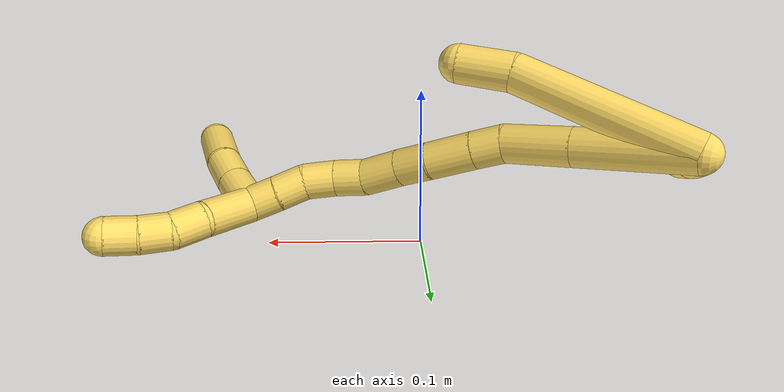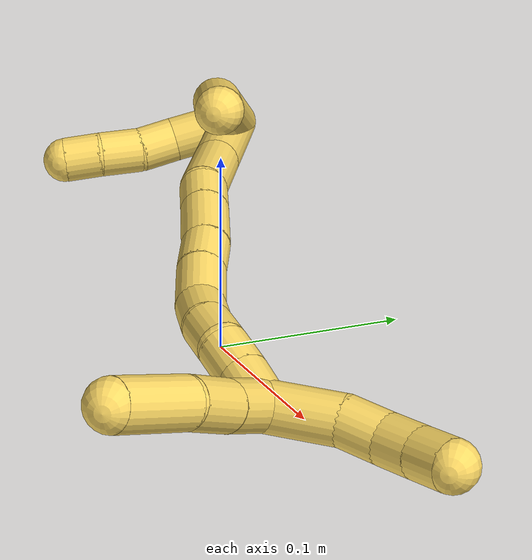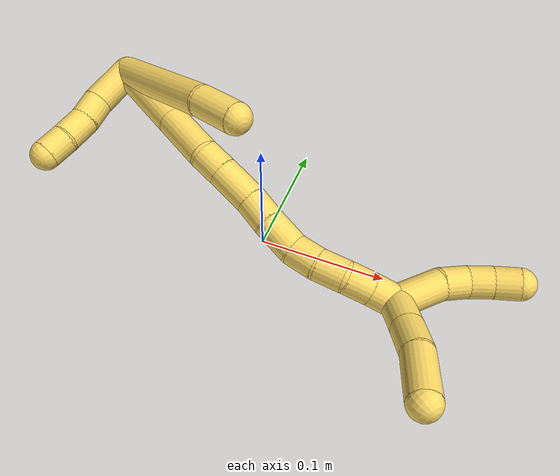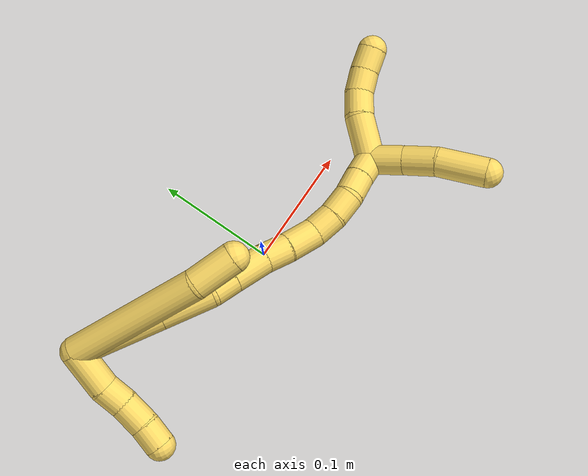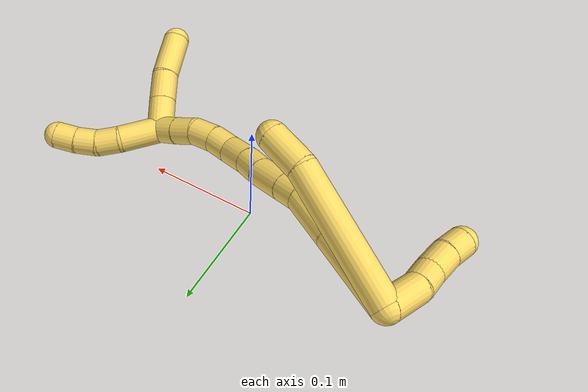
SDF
<sdf version="1.7">
 <world name="default">
  <model name="5">
   <static>0</static>
   <link name="5">
    <collision name="collision-cylinder-e_1_2_8">
     <pose>-0.000578 0.017948 0.054714 -0.316976 -0.010036 0.001604</pose>
     <geometry><cylinder><radius>0.0125</radius><length>0.115171</length></cylinder></geometry>
     <surface>
      <friction><ode><mu>1.16</mu><mu2>1.16</mu2><slip1>0</slip1><slip2>0</slip2></ode></friction>
      <contact><ode><kp>1e+06</kp><kd>1</kd><max_vel>0</max_vel><min_depth>0.001</min_depth></ode></contact>
     </surface>
    </collision>
    <visual name="visual-cylinder-e_1_2_8">
     <pose>-0.000578 0.017948 0.054714 -0.316976 -0.010036 0.001604</pose>
     <geometry><cylinder><radius>0.0125</radius><length>0.115171</length></cylinder></geometry>
     <material><ambient>1 0.858824 0.4 1</ambient></material>
    </visual>
    <collision name="collision-cylinder-e_2_8_6">
     <pose>0.002562 0.039128 0.126131 -0.191133 0.21514 -0.020702</pose>
     <geometry><cylinder><radius>0.0125</radius><length>0.034829</length></cylinder></geometry>
     <surface>
      <friction><ode><mu>1.16</mu><mu2>1.16</mu2><slip1>0</slip1><slip2>0</slip2></ode></friction>
      <contact><ode><kp>1e+06</kp><kd>1</kd><max_vel>0</max_vel><min_depth>0.001</min_depth></ode></contact>
     </surface>
    </collision>
    <visual name="visual-cylinder-e_2_8_6">
     <pose>0.002562 0.039128 0.126131 -0.191133 0.21514 -0.020702</pose>
     <geometry><cylinder><radius>0.0125</radius><length>0.034829</length></cylinder></geometry>
     <material><ambient>1 0.858824 0.4 1</ambient></material>
    </visual>
    <collision name="collision-cylinder-e_1_2_9">
     <pose>-0.011634 -0.01284 0.005088 1.19352 -0.700047 -0.486219</pose>
     <geometry><cylinder><radius>0.0125</radius><length>0.036116</length></cylinder></geometry>
     <surface>
      <friction><ode><mu>1.16</mu><mu2>1.16</mu2><slip1>0</slip1><slip2>0</slip2></ode></friction>
      <contact><ode><kp>1e+06</kp><kd>1</kd><max_vel>0</max_vel><min_depth>0.001</min_depth></ode></contact>
     </surface>
    </collision>
    <visual name="visual-cylinder-e_1_2_9">
     <pose>-0.011634 -0.01284 0.005088 1.19352 -0.700047 -0.486219</pose>
     <geometry><cylinder><radius>0.0125</radius><length>0.036116</length></cylinder></geometry>
     <material><ambient>1 0.858824 0.4 1</ambient></material>
    </visual>
    <collision name="collision-cylinder-e_2_9_10">
     <pose>-0.029309 -0.032307 0.015309 0.911831 -0.624438 -0.313956</pose>
     <geometry><cylinder><radius>0.0125</radius><length>0.020667</length></cylinder></geometry>
     <surface>
      <friction><ode><mu>1.16</mu><mu2>1.16</mu2><slip1>0</slip1><slip2>0</slip2></ode></friction>
      <contact><ode><kp>1e+06</kp><kd>1</kd><max_vel>0</max_vel><min_depth>0.001</min_depth></ode></contact>
     </surface>
    </collision>
    <visual name="visual-cylinder-e_2_9_10">
     <pose>-0.029309 -0.032307 0.015309 0.911831 -0.624438 -0.313956</pose>
     <geometry><cylinder><radius>0.0125</radius><length>0.020667</length></cylinder></geometry>
     <material><ambient>1 0.858824 0.4 1</ambient></material>
    </visual>
    <collision name="collision-cylinder-e_3_10_11">
     <pose>-0.04371 -0.045076 0.025465 0.885166 -0.811529 -0.401722</pose>
     <geometry><cylinder><radius>0.0125</radius><length>0.023051</length></cylinder></geometry>
     <surface>
      <friction><ode><mu>1.16</mu><mu2>1.16</mu2><slip1>0</slip1><slip2>0</slip2></ode></friction>
      <contact><ode><kp>1e+06</kp><kd>1</kd><max_vel>0</max_vel><min_depth>0.001</min_depth></ode></contact>
     </surface>
    </collision>
    <visual name="visual-cylinder-e_3_10_11">
     <pose>-0.04371 -0.045076 0.025465 0.885166 -0.811529 -0.401722</pose>
     <geometry><cylinder><radius>0.0125</radius><length>0.023051</length></cylinder></geometry>
     <material><ambient>1 0.858824 0.4 1</ambient></material>
    </visual>
    <collision name="collision-cylinder-e_4_11_5">
     <pose>-0.059429 -0.057341 0.033655 1.09366 -0.817999 -0.515955</pose>
     <geometry><cylinder><radius>0.0125</radius><length>0.020167</length></cylinder></geometry>
     <surface>
      <friction><ode><mu>1.16</mu><mu2>1.16</mu2><slip1>0</slip1><slip2>0</slip2></ode></friction>
      <contact><ode><kp>1e+06</kp><kd>1</kd><max_vel>0</max_vel><min_depth>0.001</min_depth></ode></contact>
     </surface>
    </collision>
    <visual name="visual-cylinder-e_4_11_5">
     <pose>-0.059429 -0.057341 0.033655 1.09366 -0.817999 -0.515955</pose>
     <geometry><cylinder><radius>0.0125</radius><length>0.020167</length></cylinder></geometry>
     <material><ambient>1 0.858824 0.4 1</ambient></material>
    </visual>
    <collision name="collision-cylinder-e_1_2_12">
     <pose>0.005261 -0.002014 0.035029 0.05742 0.148846 0.004282</pose>
     <geometry><cylinder><radius>0.0125</radius><length>0.070959</length></cylinder></geometry>
     <surface>
      <friction><ode><mu>1.16</mu><mu2>1.16</mu2><slip1>0</slip1><slip2>0</slip2></ode></friction>
      <contact><ode><kp>1e+06</kp><kd>1</kd><max_vel>0</max_vel><min_depth>0.001</min_depth></ode></contact>
     </surface>
    </collision>
    <visual name="visual-cylinder-e_1_2_12">
     <pose>0.005261 -0.002014 0.035029 0.05742 0.148846 0.004282</pose>
     <geometry><cylinder><radius>0.0125</radius><length>0.070959</length></cylinder></geometry>
     <material><ambient>1 0.858824 0.4 1</ambient></material>
    </visual>
    <collision name="collision-cylinder-e_2_12_13">
     <pose>0.013777 -0.005195 0.091671 0.053987 0.149217 0.004036</pose>
     <geometry><cylinder><radius>0.0125</radius><length>0.043774</length></cylinder></geometry>
     <surface>
      <friction><ode><mu>1.16</mu><mu2>1.16</mu2><slip1>0</slip1><slip2>0</slip2></ode></friction>
      <contact><ode><kp>1e+06</kp><kd>1</kd><max_vel>0</max_vel><min_depth>0.001</min_depth></ode></contact>
     </surface>
    </collision>
    <visual name="visual-cylinder-e_2_12_13">
     <pose>0.013777 -0.005195 0.091671 0.053987 0.149217 0.004036</pose>
     <geometry><cylinder><radius>0.0125</radius><length>0.043774</length></cylinder></geometry>
     <material><ambient>1 0.858824 0.4 1</ambient></material>
    </visual>
    <collision name="collision-cylinder-e_3_13_14">
     <pose>0.02119 -0.008009 0.122349 0.179587 0.424066 0.038759</pose>
     <geometry><cylinder><radius>0.0125</radius><length>0.020218</length></cylinder></geometry>
     <surface>
      <friction><ode><mu>1.16</mu><mu2>1.16</mu2><slip1>0</slip1><slip2>0</slip2></ode></friction>
      <contact><ode><kp>1e+06</kp><kd>1</kd><max_vel>0</max_vel><min_depth>0.001</min_depth></ode></contact>
     </surface>
    </collision>
    <visual name="visual-cylinder-e_3_13_14">
     <pose>0.02119 -0.008009 0.122349 0.179587 0.424066 0.038759</pose>
     <geometry><cylinder><radius>0.0125</radius><length>0.020218</length></cylinder></geometry>
     <material><ambient>1 0.858824 0.4 1</ambient></material>
    </visual>
    <collision name="collision-cylinder-e_4_14_15">
     <pose>0.031648 -0.012536 0.145281 0.204883 0.418442 0.043648</pose>
     <geometry><cylinder><radius>0.0125</radius><length>0.031001</length></cylinder></geometry>
     <surface>
      <friction><ode><mu>1.16</mu><mu2>1.16</mu2><slip1>0</slip1><slip2>0</slip2></ode></friction>
      <contact><ode><kp>1e+06</kp><kd>1</kd><max_vel>0</max_vel><min_depth>0.001</min_depth></ode></contact>
     </surface>
    </collision>
    <visual name="visual-cylinder-e_4_14_15">
     <pose>0.031648 -0.012536 0.145281 0.204883 0.418442 0.043648</pose>
     <geometry><cylinder><radius>0.0125</radius><length>0.031001</length></cylinder></geometry>
     <material><ambient>1 0.858824 0.4 1</ambient></material>
    </visual>
    <collision name="collision-cylinder-e_5_15_16">
     <pose>0.041348 -0.018132 0.169262 0.262249 0.314056 0.041756</pose>
     <geometry><cylinder><radius>0.0125</radius><length>0.022021</length></cylinder></geometry>
     <surface>
      <friction><ode><mu>1.16</mu><mu2>1.16</mu2><slip1>0</slip1><slip2>0</slip2></ode></friction>
      <contact><ode><kp>1e+06</kp><kd>1</kd><max_vel>0</max_vel><min_depth>0.001</min_depth></ode></contact>
     </surface>
    </collision>
    <visual name="visual-cylinder-e_5_15_16">
     <pose>0.041348 -0.018132 0.169262 0.262249 0.314056 0.041756</pose>
     <geometry><cylinder><radius>0.0125</radius><length>0.022021</length></cylinder></geometry>
     <material><ambient>1 0.858824 0.4 1</ambient></material>
    </visual>
    <collision name="collision-cylinder-e_6_16_17">
     <pose>0.050144 -0.024038 0.191572 0.255862 0.404345 0.052721</pose>
     <geometry><cylinder><radius>0.0125</radius><length>0.027425</length></cylinder></geometry>
     <surface>
      <friction><ode><mu>1.16</mu><mu2>1.16</mu2><slip1>0</slip1><slip2>0</slip2></ode></friction>
      <contact><ode><kp>1e+06</kp><kd>1</kd><max_vel>0</max_vel><min_depth>0.001</min_depth></ode></contact>
     </surface>
    </collision>
    <visual name="visual-cylinder-e_6_16_17">
     <pose>0.050144 -0.024038 0.191572 0.255862 0.404345 0.052721</pose>
     <geometry><cylinder><radius>0.0125</radius><length>0.027425</length></cylinder></geometry>
     <material><ambient>1 0.858824 0.4 1</ambient></material>
    </visual>
    <collision name="collision-cylinder-e_7_17_18">
     <pose>0.059944 -0.02654 0.21343 -0.071105 0.426847 -0.015416</pose>
     <geometry><cylinder><radius>0.0125</radius><length>0.021282</length></cylinder></geometry>
     <surface>
      <friction><ode><mu>1.16</mu><mu2>1.16</mu2><slip1>0</slip1><slip2>0</slip2></ode></friction>
      <contact><ode><kp>1e+06</kp><kd>1</kd><max_vel>0</max_vel><min_depth>0.001</min_depth></ode></contact>
     </surface>
    </collision>
    <visual name="visual-cylinder-e_7_17_18">
     <pose>0.059944 -0.02654 0.21343 -0.071105 0.426847 -0.015416</pose>
     <geometry><cylinder><radius>0.0125</radius><length>0.021282</length></cylinder></geometry>
     <material><ambient>1 0.858824 0.4 1</ambient></material>
    </visual>
    <collision name="collision-cylinder-e_8_18_19">
     <pose>0.070557 -0.024555 0.231893 -0.146312 0.609183 -0.046071</pose>
     <geometry><cylinder><radius>0.0125</radius><length>0.021696</length></cylinder></geometry>
     <surface>
      <friction><ode><mu>1.16</mu><mu2>1.16</mu2><slip1>0</slip1><slip2>0</slip2></ode></friction>
      <contact><ode><kp>1e+06</kp><kd>1</kd><max_vel>0</max_vel><min_depth>0.001</min_depth></ode></contact>
     </surface>
    </collision>
    <visual name="visual-cylinder-e_8_18_19">
     <pose>0.070557 -0.024555 0.231893 -0.146312 0.609183 -0.046071</pose>
     <geometry><cylinder><radius>0.0125</radius><length>0.021696</length></cylinder></geometry>
     <material><ambient>1 0.858824 0.4 1</ambient></material>
    </visual>
    <collision name="collision-cylinder-e_9_19_20">
     <pose>0.084697 -0.023712 0.247328 0.068362 0.873268 0.031913</pose>
     <geometry><cylinder><radius>0.0125</radius><length>0.020702</length></cylinder></geometry>
     <surface>
      <friction><ode><mu>1.16</mu><mu2>1.16</mu2><slip1>0</slip1><slip2>0</slip2></ode></friction>
      <contact><ode><kp>1e+06</kp><kd>1</kd><max_vel>0</max_vel><min_depth>0.001</min_depth></ode></contact>
     </surface>
    </collision>
    <visual name="visual-cylinder-e_9_19_20">
     <pose>0.084697 -0.023712 0.247328 0.068362 0.873268 0.031913</pose>
     <geometry><cylinder><radius>0.0125</radius><length>0.020702</length></cylinder></geometry>
     <material><ambient>1 0.858824 0.4 1</ambient></material>
    </visual>
    <collision name="collision-cylinder-e_10_20_1">
     <pose>0.100216 -0.024774 0.26114 0.084432 0.811193 0.036273</pose>
     <geometry><cylinder><radius>0.0125</radius><length>0.020922</length></cylinder></geometry>
     <surface>
      <friction><ode><mu>1.16</mu><mu2>1.16</mu2><slip1>0</slip1><slip2>0</slip2></ode></friction>
      <contact><ode><kp>1e+06</kp><kd>1</kd><max_vel>0</max_vel><min_depth>0.001</min_depth></ode></contact>
     </surface>
    </collision>
    <visual name="visual-cylinder-e_10_20_1">
     <pose>0.100216 -0.024774 0.26114 0.084432 0.811193 0.036273</pose>
     <geometry><cylinder><radius>0.0125</radius><length>0.020922</length></cylinder></geometry>
     <material><ambient>1 0.858824 0.4 1</ambient></material>
    </visual>
    <collision name="collision-cylinder-e_1_1_21">
     <pose>0.124867 -0.016727 0.26985 -1.39557 1.0952 -0.945339</pose>
     <geometry><cylinder><radius>0.0125</radius><length>0.038391</length></cylinder></geometry>
     <surface>
      <friction><ode><mu>1.16</mu><mu2>1.16</mu2><slip1>0</slip1><slip2>0</slip2></ode></friction>
      <contact><ode><kp>1e+06</kp><kd>1</kd><max_vel>0</max_vel><min_depth>0.001</min_depth></ode></contact>
     </surface>
    </collision>
    <visual name="visual-cylinder-e_1_1_21">
     <pose>0.124867 -0.016727 0.26985 -1.39557 1.0952 -0.945339</pose>
     <geometry><cylinder><radius>0.0125</radius><length>0.038391</length></cylinder></geometry>
     <material><ambient>1 0.858824 0.4 1</ambient></material>
    </visual>
    <collision name="collision-cylinder-e_2_21_22">
     <pose>0.151752 -0.004873 0.274545 -0.791143 1.14121 -0.52372</pose>
     <geometry><cylinder><radius>0.0125</radius><length>0.021603</length></cylinder></geometry>
     <surface>
      <friction><ode><mu>1.16</mu><mu2>1.16</mu2><slip1>0</slip1><slip2>0</slip2></ode></friction>
      <contact><ode><kp>1e+06</kp><kd>1</kd><max_vel>0</max_vel><min_depth>0.001</min_depth></ode></contact>
     </surface>
    </collision>
    <visual name="visual-cylinder-e_2_21_22">
     <pose>0.151752 -0.004873 0.274545 -0.791143 1.14121 -0.52372</pose>
     <geometry><cylinder><radius>0.0125</radius><length>0.021603</length></cylinder></geometry>
     <material><ambient>1 0.858824 0.4 1</ambient></material>
    </visual>
    <collision name="collision-cylinder-e_3_22_23">
     <pose>0.169168 0.002137 0.28298 -0.625843 0.86261 -0.295626</pose>
     <geometry><cylinder><radius>0.0125</radius><length>0.020001</length></cylinder></geometry>
     <surface>
      <friction><ode><mu>1.16</mu><mu2>1.16</mu2><slip1>0</slip1><slip2>0</slip2></ode></friction>
      <contact><ode><kp>1e+06</kp><kd>1</kd><max_vel>0</max_vel><min_depth>0.001</min_depth></ode></contact>
     </surface>
    </collision>
    <visual name="visual-cylinder-e_3_22_23">
     <pose>0.169168 0.002137 0.28298 -0.625843 0.86261 -0.295626</pose>
     <geometry><cylinder><radius>0.0125</radius><length>0.020001</length></cylinder></geometry>
     <material><ambient>1 0.858824 0.4 1</ambient></material>
    </visual>
    <collision name="collision-cylinder-e_4_23_4">
     <pose>0.183484 0.010002 0.294452 -0.579188 0.736741 -0.229021</pose>
     <geometry><cylinder><radius>0.0125</radius><length>0.020005</length></cylinder></geometry>
     <surface>
      <friction><ode><mu>1.16</mu><mu2>1.16</mu2><slip1>0</slip1><slip2>0</slip2></ode></friction>
      <contact><ode><kp>1e+06</kp><kd>1</kd><max_vel>0</max_vel><min_depth>0.001</min_depth></ode></contact>
     </surface>
    </collision>
    <visual name="visual-cylinder-e_4_23_4">
     <pose>0.183484 0.010002 0.294452 -0.579188 0.736741 -0.229021</pose>
     <geometry><cylinder><radius>0.0125</radius><length>0.020005</length></cylinder></geometry>
     <material><ambient>1 0.858824 0.4 1</ambient></material>
    </visual>
    <collision name="collision-cylinder-e_1_1_24">
     <pose>0.101248 -0.02493 0.281525 -0.034161 -0.460351 0.008006</pose>
     <geometry><cylinder><radius>0.0125</radius><length>0.029501</length></cylinder></geometry>
     <surface>
      <friction><ode><mu>1.16</mu><mu2>1.16</mu2><slip1>0</slip1><slip2>0</slip2></ode></friction>
      <contact><ode><kp>1e+06</kp><kd>1</kd><max_vel>0</max_vel><min_depth>0.001</min_depth></ode></contact>
     </surface>
    </collision>
    <visual name="visual-cylinder-e_1_1_24">
     <pose>0.101248 -0.02493 0.281525 -0.034161 -0.460351 0.008006</pose>
     <geometry><cylinder><radius>0.0125</radius><length>0.029501</length></cylinder></geometry>
     <material><ambient>1 0.858824 0.4 1</ambient></material>
    </visual>
    <collision name="collision-cylinder-e_2_24_25">
     <pose>0.087816 -0.023689 0.30698 -0.064372 -0.510868 0.016815</pose>
     <geometry><cylinder><radius>0.0125</radius><length>0.02814</length></cylinder></geometry>
     <surface>
      <friction><ode><mu>1.16</mu><mu2>1.16</mu2><slip1>0</slip1><slip2>0</slip2></ode></friction>
      <contact><ode><kp>1e+06</kp><kd>1</kd><max_vel>0</max_vel><min_depth>0.001</min_depth></ode></contact>
     </surface>
    </collision>
    <visual name="visual-cylinder-e_2_24_25">
     <pose>0.087816 -0.023689 0.30698 -0.064372 -0.510868 0.016815</pose>
     <geometry><cylinder><radius>0.0125</radius><length>0.02814</length></cylinder></geometry>
     <material><ambient>1 0.858824 0.4 1</ambient></material>
    </visual>
    <collision name="collision-cylinder-e_3_25_3">
     <pose>0.069007 -0.025313 0.336561 0.138368 -0.598323 -0.042737</pose>
     <geometry><cylinder><radius>0.0125</radius><length>0.042359</length></cylinder></geometry>
     <surface>
      <friction><ode><mu>1.16</mu><mu2>1.16</mu2><slip1>0</slip1><slip2>0</slip2></ode></friction>
      <contact><ode><kp>1e+06</kp><kd>1</kd><max_vel>0</max_vel><min_depth>0.001</min_depth></ode></contact>
     </surface>
    </collision>
    <visual name="visual-cylinder-e_3_25_3">
     <pose>0.069007 -0.025313 0.336561 0.138368 -0.598323 -0.042737</pose>
     <geometry><cylinder><radius>0.0125</radius><length>0.042359</length></cylinder></geometry>
     <material><ambient>1 0.858824 0.4 1</ambient></material>
    </visual>
    <collision name="collision-sphere-3">
     <pose>0.057078 -0.027727 0.353894 0 -0 0</pose>
     <geometry><sphere><radius>0.0125</radius></sphere></geometry>
     <surface>
      <friction><ode><mu>1.16</mu><mu2>1.16</mu2><slip1>0</slip1><slip2>0</slip2></ode></friction>
      <contact><ode><kp>1e+06</kp><kd>1</kd><max_vel>0</max_vel><min_depth>0.001</min_depth></ode></contact>
     </surface>
    </collision>
    <visual name="visual-sphere-3">
     <pose>0.057078 -0.027727 0.353894 0 -0 0</pose>
     <geometry><sphere><radius>0.0125</radius></sphere></geometry>
     <material><ambient>1 0.858824 0.4 1</ambient></material>
    </visual>
    <collision name="collision-sphere-25">
     <pose>0.080936 -0.0229 0.319228 0 -0 0</pose>
     <geometry><sphere><radius>0.0125</radius></sphere></geometry>
     <surface>
      <friction><ode><mu>1.16</mu><mu2>1.16</mu2><slip1>0</slip1><slip2>0</slip2></ode></friction>
      <contact><ode><kp>1e+06</kp><kd>1</kd><max_vel>0</max_vel><min_depth>0.001</min_depth></ode></contact>
     </surface>
    </collision>
    <visual name="visual-sphere-25">
     <pose>0.080936 -0.0229 0.319228 0 -0 0</pose>
     <geometry><sphere><radius>0.0125</radius></sphere></geometry>
     <material><ambient>1 0.858824 0.4 1</ambient></material>
    </visual>
    <collision name="collision-sphere-24">
     <pose>0.094695 -0.024479 0.294732 0 -0 0</pose>
     <geometry><sphere><radius>0.0125</radius></sphere></geometry>
     <surface>
      <friction><ode><mu>1.16</mu><mu2>1.16</mu2><slip1>0</slip1><slip2>0</slip2></ode></friction>
      <contact><ode><kp>1e+06</kp><kd>1</kd><max_vel>0</max_vel><min_depth>0.001</min_depth></ode></contact>
     </surface>
    </collision>
    <visual name="visual-sphere-24">
     <pose>0.094695 -0.024479 0.294732 0 -0 0</pose>
     <geometry><sphere><radius>0.0125</radius></sphere></geometry>
     <material><ambient>1 0.858824 0.4 1</ambient></material>
    </visual>
    <collision name="collision-sphere-4">
     <pose>0.190204 0.014057 0.300652 0 -0 0</pose>
     <geometry><sphere><radius>0.0125</radius></sphere></geometry>
     <surface>
      <friction><ode><mu>1.16</mu><mu2>1.16</mu2><slip1>0</slip1><slip2>0</slip2></ode></friction>
      <contact><ode><kp>1e+06</kp><kd>1</kd><max_vel>0</max_vel><min_depth>0.001</min_depth></ode></contact>
     </surface>
    </collision>
    <visual name="visual-sphere-4">
     <pose>0.190204 0.014057 0.300652 0 -0 0</pose>
     <geometry><sphere><radius>0.0125</radius></sphere></geometry>
     <material><ambient>1 0.858824 0.4 1</ambient></material>
    </visual>
    <collision name="collision-sphere-23">
     <pose>0.176764 0.005947 0.288252 0 -0 0</pose>
     <geometry><sphere><radius>0.0125</radius></sphere></geometry>
     <surface>
      <friction><ode><mu>1.16</mu><mu2>1.16</mu2><slip1>0</slip1><slip2>0</slip2></ode></friction>
      <contact><ode><kp>1e+06</kp><kd>1</kd><max_vel>0</max_vel><min_depth>0.001</min_depth></ode></contact>
     </surface>
    </collision>
    <visual name="visual-sphere-23">
     <pose>0.176764 0.005947 0.288252 0 -0 0</pose>
     <geometry><sphere><radius>0.0125</radius></sphere></geometry>
     <material><ambient>1 0.858824 0.4 1</ambient></material>
    </visual>
    <collision name="collision-sphere-22">
     <pose>0.161572 -0.001674 0.277708 0 -0 0</pose>
     <geometry><sphere><radius>0.0125</radius></sphere></geometry>
     <surface>
      <friction><ode><mu>1.16</mu><mu2>1.16</mu2><slip1>0</slip1><slip2>0</slip2></ode></friction>
      <contact><ode><kp>1e+06</kp><kd>1</kd><max_vel>0</max_vel><min_depth>0.001</min_depth></ode></contact>
     </surface>
    </collision>
    <visual name="visual-sphere-22">
     <pose>0.161572 -0.001674 0.277708 0 -0 0</pose>
     <geometry><sphere><radius>0.0125</radius></sphere></geometry>
     <material><ambient>1 0.858824 0.4 1</ambient></material>
    </visual>
    <collision name="collision-sphere-21">
     <pose>0.141932 -0.008072 0.271382 0 -0 0</pose>
     <geometry><sphere><radius>0.0125</radius></sphere></geometry>
     <surface>
      <friction><ode><mu>1.16</mu><mu2>1.16</mu2><slip1>0</slip1><slip2>0</slip2></ode></friction>
      <contact><ode><kp>1e+06</kp><kd>1</kd><max_vel>0</max_vel><min_depth>0.001</min_depth></ode></contact>
     </surface>
    </collision>
    <visual name="visual-sphere-21">
     <pose>0.141932 -0.008072 0.271382 0 -0 0</pose>
     <geometry><sphere><radius>0.0125</radius></sphere></geometry>
     <material><ambient>1 0.858824 0.4 1</ambient></material>
    </visual>
    <collision name="collision-sphere-1">
     <pose>0.107801 -0.025381 0.268318 0 -0 0</pose>
     <geometry><sphere><radius>0.0125</radius></sphere></geometry>
     <surface>
      <friction><ode><mu>1.16</mu><mu2>1.16</mu2><slip1>0</slip1><slip2>0</slip2></ode></friction>
      <contact><ode><kp>1e+06</kp><kd>1</kd><max_vel>0</max_vel><min_depth>0.001</min_depth></ode></contact>
     </surface>
    </collision>
    <visual name="visual-sphere-1">
     <pose>0.107801 -0.025381 0.268318 0 -0 0</pose>
     <geometry><sphere><radius>0.0125</radius></sphere></geometry>
     <material><ambient>1 0.858824 0.4 1</ambient></material>
    </visual>
    <collision name="collision-sphere-11">
     <pose>-0.05207 -0.051217 0.030489 0 -0 0</pose>
     <geometry><sphere><radius>0.0125</radius></sphere></geometry>
     <surface>
      <friction><ode><mu>1.16</mu><mu2>1.16</mu2><slip1>0</slip1><slip2>0</slip2></ode></friction>
      <contact><ode><kp>1e+06</kp><kd>1</kd><max_vel>0</max_vel><min_depth>0.001</min_depth></ode></contact>
     </surface>
    </collision>
    <visual name="visual-sphere-11">
     <pose>-0.05207 -0.051217 0.030489 0 -0 0</pose>
     <geometry><sphere><radius>0.0125</radius></sphere></geometry>
     <material><ambient>1 0.858824 0.4 1</ambient></material>
    </visual>
    <collision name="collision-sphere-10">
     <pose>-0.03535 -0.038935 0.020442 0 -0 0</pose>
     <geometry><sphere><radius>0.0125</radius></sphere></geometry>
     <surface>
      <friction><ode><mu>1.16</mu><mu2>1.16</mu2><slip1>0</slip1><slip2>0</slip2></ode></friction>
      <contact><ode><kp>1e+06</kp><kd>1</kd><max_vel>0</max_vel><min_depth>0.001</min_depth></ode></contact>
     </surface>
    </collision>
    <visual name="visual-sphere-10">
     <pose>-0.03535 -0.038935 0.020442 0 -0 0</pose>
     <geometry><sphere><radius>0.0125</radius></sphere></geometry>
     <material><ambient>1 0.858824 0.4 1</ambient></material>
    </visual>
    <collision name="collision-sphere-6">
     <pose>0.00628 0.04236 0.142834 0 -0 0</pose>
     <geometry><sphere><radius>0.0125</radius></sphere></geometry>
     <surface>
      <friction><ode><mu>1.16</mu><mu2>1.16</mu2><slip1>0</slip1><slip2>0</slip2></ode></friction>
      <contact><ode><kp>1e+06</kp><kd>1</kd><max_vel>0</max_vel><min_depth>0.001</min_depth></ode></contact>
     </surface>
    </collision>
    <visual name="visual-sphere-6">
     <pose>0.00628 0.04236 0.142834 0 -0 0</pose>
     <geometry><sphere><radius>0.0125</radius></sphere></geometry>
     <material><ambient>1 0.858824 0.4 1</ambient></material>
    </visual>
    <collision name="collision-sphere-9">
     <pose>-0.023268 -0.025679 0.010176 0 -0 0</pose>
     <geometry><sphere><radius>0.0125</radius></sphere></geometry>
     <surface>
      <friction><ode><mu>1.16</mu><mu2>1.16</mu2><slip1>0</slip1><slip2>0</slip2></ode></friction>
      <contact><ode><kp>1e+06</kp><kd>1</kd><max_vel>0</max_vel><min_depth>0.001</min_depth></ode></contact>
     </surface>
    </collision>
    <visual name="visual-sphere-9">
     <pose>-0.023268 -0.025679 0.010176 0 -0 0</pose>
     <geometry><sphere><radius>0.0125</radius></sphere></geometry>
     <material><ambient>1 0.858824 0.4 1</ambient></material>
    </visual>
    <collision name="collision-sphere-2">
     <geometry><sphere><radius>0.0125</radius></sphere></geometry>
     <surface>
      <friction><ode><mu>1.16</mu><mu2>1.16</mu2><slip1>0</slip1><slip2>0</slip2></ode></friction>
      <contact><ode><kp>1e+06</kp><kd>1</kd><max_vel>0</max_vel><min_depth>0.001</min_depth></ode></contact>
     </surface>
    </collision>
    <visual name="visual-sphere-2">
     <geometry><sphere><radius>0.0125</radius></sphere></geometry>
     <material><ambient>1 0.858824 0.4 1</ambient></material>
    </visual>
    <collision name="collision-sphere-19">
     <pose>0.076764 -0.023258 0.240695 0 -0 0</pose>
     <geometry><sphere><radius>0.0125</radius></sphere></geometry>
     <surface>
      <friction><ode><mu>1.16</mu><mu2>1.16</mu2><slip1>0</slip1><slip2>0</slip2></ode></friction>
      <contact><ode><kp>1e+06</kp><kd>1</kd><max_vel>0</max_vel><min_depth>0.001</min_depth></ode></contact>
     </surface>
    </collision>
    <visual name="visual-sphere-19">
     <pose>0.076764 -0.023258 0.240695 0 -0 0</pose>
     <geometry><sphere><radius>0.0125</radius></sphere></geometry>
     <material><ambient>1 0.858824 0.4 1</ambient></material>
    </visual>
    <collision name="collision-sphere-8">
     <pose>-0.001156 0.035896 0.109428 0 -0 0</pose>
     <geometry><sphere><radius>0.0125</radius></sphere></geometry>
     <surface>
      <friction><ode><mu>1.16</mu><mu2>1.16</mu2><slip1>0</slip1><slip2>0</slip2></ode></friction>
      <contact><ode><kp>1e+06</kp><kd>1</kd><max_vel>0</max_vel><min_depth>0.001</min_depth></ode></contact>
     </surface>
    </collision>
    <visual name="visual-sphere-8">
     <pose>-0.001156 0.035896 0.109428 0 -0 0</pose>
     <geometry><sphere><radius>0.0125</radius></sphere></geometry>
     <material><ambient>1 0.858824 0.4 1</ambient></material>
    </visual>
    <collision name="collision-sphere-5">
     <pose>-0.066787 -0.063465 0.036821 0 -0 0</pose>
     <geometry><sphere><radius>0.0125</radius></sphere></geometry>
     <surface>
      <friction><ode><mu>1.16</mu><mu2>1.16</mu2><slip1>0</slip1><slip2>0</slip2></ode></friction>
      <contact><ode><kp>1e+06</kp><kd>1</kd><max_vel>0</max_vel><min_depth>0.001</min_depth></ode></contact>
     </surface>
    </collision>
    <visual name="visual-sphere-5">
     <pose>-0.066787 -0.063465 0.036821 0 -0 0</pose>
     <geometry><sphere><radius>0.0125</radius></sphere></geometry>
     <material><ambient>1 0.858824 0.4 1</ambient></material>
    </visual>
    <collision name="collision-sphere-12">
     <pose>0.010523 -0.004027 0.070059 0 -0 0</pose>
     <geometry><sphere><radius>0.0125</radius></sphere></geometry>
     <surface>
      <friction><ode><mu>1.16</mu><mu2>1.16</mu2><slip1>0</slip1><slip2>0</slip2></ode></friction>
      <contact><ode><kp>1e+06</kp><kd>1</kd><max_vel>0</max_vel><min_depth>0.001</min_depth></ode></contact>
     </surface>
    </collision>
    <visual name="visual-sphere-12">
     <pose>0.010523 -0.004027 0.070059 0 -0 0</pose>
     <geometry><sphere><radius>0.0125</radius></sphere></geometry>
     <material><ambient>1 0.858824 0.4 1</ambient></material>
    </visual>
    <collision name="collision-sphere-13">
     <pose>0.017031 -0.006363 0.113283 0 -0 0</pose>
     <geometry><sphere><radius>0.0125</radius></sphere></geometry>
     <surface>
      <friction><ode><mu>1.16</mu><mu2>1.16</mu2><slip1>0</slip1><slip2>0</slip2></ode></friction>
      <contact><ode><kp>1e+06</kp><kd>1</kd><max_vel>0</max_vel><min_depth>0.001</min_depth></ode></contact>
     </surface>
    </collision>
    <visual name="visual-sphere-13">
     <pose>0.017031 -0.006363 0.113283 0 -0 0</pose>
     <geometry><sphere><radius>0.0125</radius></sphere></geometry>
     <material><ambient>1 0.858824 0.4 1</ambient></material>
    </visual>
    <collision name="collision-sphere-14">
     <pose>0.025349 -0.009654 0.131414 0 -0 0</pose>
     <geometry><sphere><radius>0.0125</radius></sphere></geometry>
     <surface>
      <friction><ode><mu>1.16</mu><mu2>1.16</mu2><slip1>0</slip1><slip2>0</slip2></ode></friction>
      <contact><ode><kp>1e+06</kp><kd>1</kd><max_vel>0</max_vel><min_depth>0.001</min_depth></ode></contact>
     </surface>
    </collision>
    <visual name="visual-sphere-14">
     <pose>0.025349 -0.009654 0.131414 0 -0 0</pose>
     <geometry><sphere><radius>0.0125</radius></sphere></geometry>
     <material><ambient>1 0.858824 0.4 1</ambient></material>
    </visual>
    <collision name="collision-sphere-15">
     <pose>0.037947 -0.015418 0.159148 0 -0 0</pose>
     <geometry><sphere><radius>0.0125</radius></sphere></geometry>
     <surface>
      <friction><ode><mu>1.16</mu><mu2>1.16</mu2><slip1>0</slip1><slip2>0</slip2></ode></friction>
      <contact><ode><kp>1e+06</kp><kd>1</kd><max_vel>0</max_vel><min_depth>0.001</min_depth></ode></contact>
     </surface>
    </collision>
    <visual name="visual-sphere-15">
     <pose>0.037947 -0.015418 0.159148 0 -0 0</pose>
     <geometry><sphere><radius>0.0125</radius></sphere></geometry>
     <material><ambient>1 0.858824 0.4 1</ambient></material>
    </visual>
    <collision name="collision-sphere-16">
     <pose>0.044749 -0.020847 0.179376 0 -0 0</pose>
     <geometry><sphere><radius>0.0125</radius></sphere></geometry>
     <surface>
      <friction><ode><mu>1.16</mu><mu2>1.16</mu2><slip1>0</slip1><slip2>0</slip2></ode></friction>
      <contact><ode><kp>1e+06</kp><kd>1</kd><max_vel>0</max_vel><min_depth>0.001</min_depth></ode></contact>
     </surface>
    </collision>
    <visual name="visual-sphere-16">
     <pose>0.044749 -0.020847 0.179376 0 -0 0</pose>
     <geometry><sphere><radius>0.0125</radius></sphere></geometry>
     <material><ambient>1 0.858824 0.4 1</ambient></material>
    </visual>
    <collision name="collision-sphere-17">
     <pose>0.055539 -0.027228 0.203768 0 -0 0</pose>
     <geometry><sphere><radius>0.0125</radius></sphere></geometry>
     <surface>
      <friction><ode><mu>1.16</mu><mu2>1.16</mu2><slip1>0</slip1><slip2>0</slip2></ode></friction>
      <contact><ode><kp>1e+06</kp><kd>1</kd><max_vel>0</max_vel><min_depth>0.001</min_depth></ode></contact>
     </surface>
    </collision>
    <visual name="visual-sphere-17">
     <pose>0.055539 -0.027228 0.203768 0 -0 0</pose>
     <geometry><sphere><radius>0.0125</radius></sphere></geometry>
     <material><ambient>1 0.858824 0.4 1</ambient></material>
    </visual>
    <collision name="collision-sphere-18">
     <pose>0.064349 -0.025852 0.223092 0 -0 0</pose>
     <geometry><sphere><radius>0.0125</radius></sphere></geometry>
     <surface>
      <friction><ode><mu>1.16</mu><mu2>1.16</mu2><slip1>0</slip1><slip2>0</slip2></ode></friction>
      <contact><ode><kp>1e+06</kp><kd>1</kd><max_vel>0</max_vel><min_depth>0.001</min_depth></ode></contact>
     </surface>
    </collision>
    <visual name="visual-sphere-18">
     <pose>0.064349 -0.025852 0.223092 0 -0 0</pose>
     <geometry><sphere><radius>0.0125</radius></sphere></geometry>
     <material><ambient>1 0.858824 0.4 1</ambient></material>
    </visual>
    <collision name="collision-sphere-20">
     <pose>0.092631 -0.024166 0.253962 0 -0 0</pose>
     <geometry><sphere><radius>0.0125</radius></sphere></geometry>
     <surface>
      <friction><ode><mu>1.16</mu><mu2>1.16</mu2><slip1>0</slip1><slip2>0</slip2></ode></friction>
      <contact><ode><kp>1e+06</kp><kd>1</kd><max_vel>0</max_vel><min_depth>0.001</min_depth></ode></contact>
     </surface>
    </collision>
    <visual name="visual-sphere-20">
     <pose>0.092631 -0.024166 0.253962 0 -0 0</pose>
     <geometry><sphere><radius>0.0125</radius></sphere></geometry>
     <material><ambient>1 0.858824 0.4 1</ambient></material>
    </visual>
    <inertial>
     <pose>0.042168 -0.009283 0.152154 0 -0 0</pose>
     <mass>0.75</mass>
     <inertia><ixx>0.000215</ixx><ixy>0</ixy><ixz>0</ixz><iyy>0.000211</iyy><iyz>0</iyz><izz>1e-06</izz></inertia>
    </inertial>
   </link>
   <pose>-0.150234 0.071599 0.073135 1.47852 0.52652 0.878222</pose>
  </model>
 </world>
</sdf>
